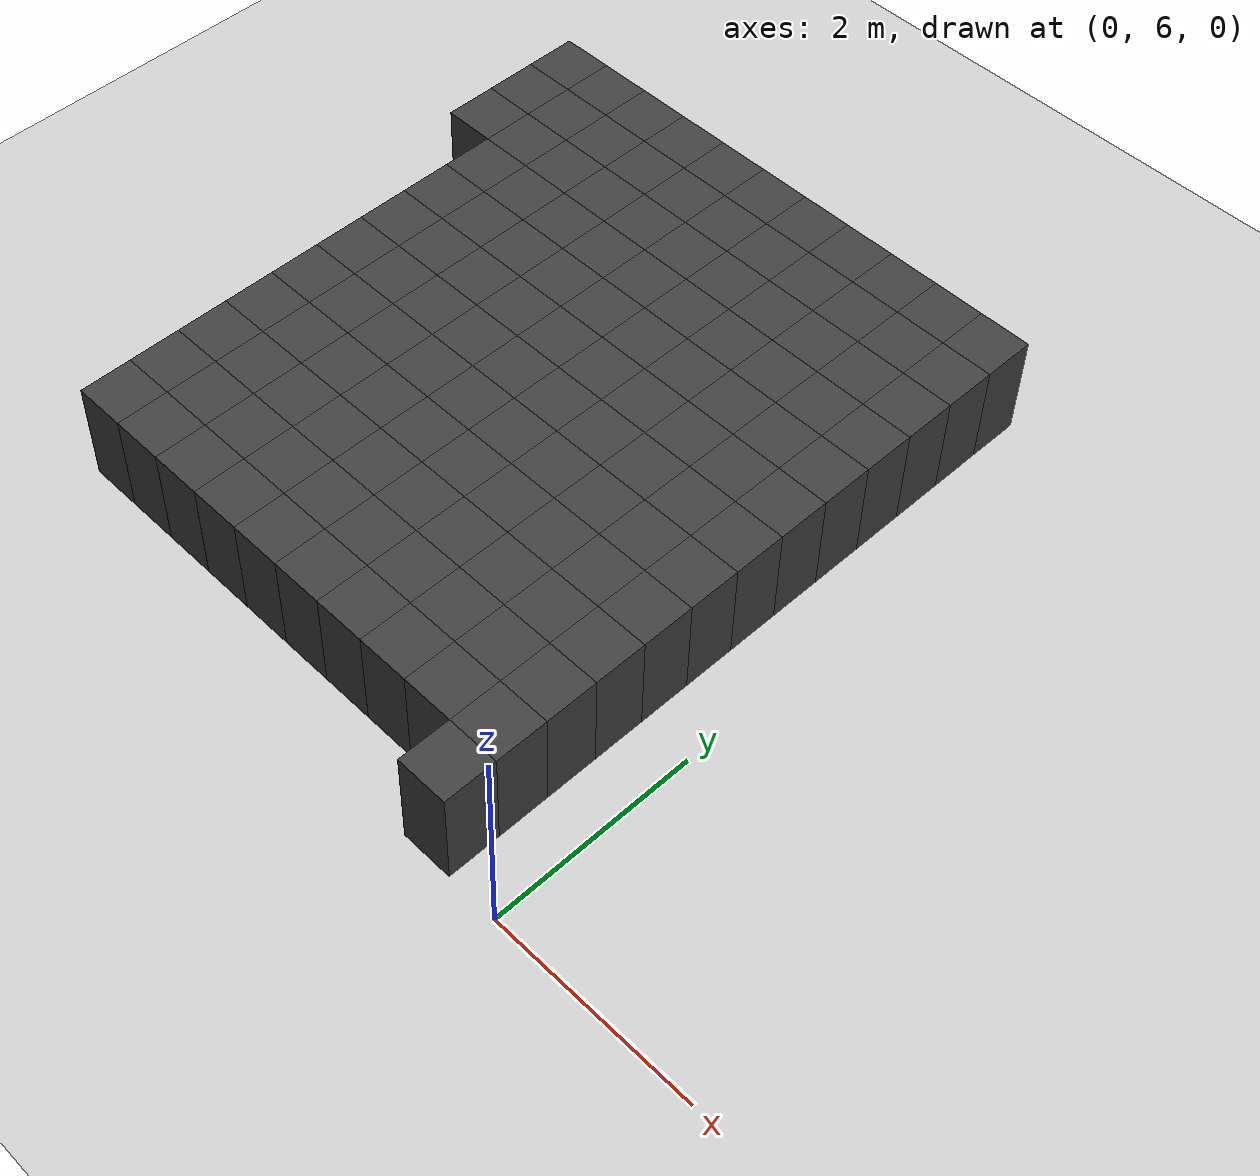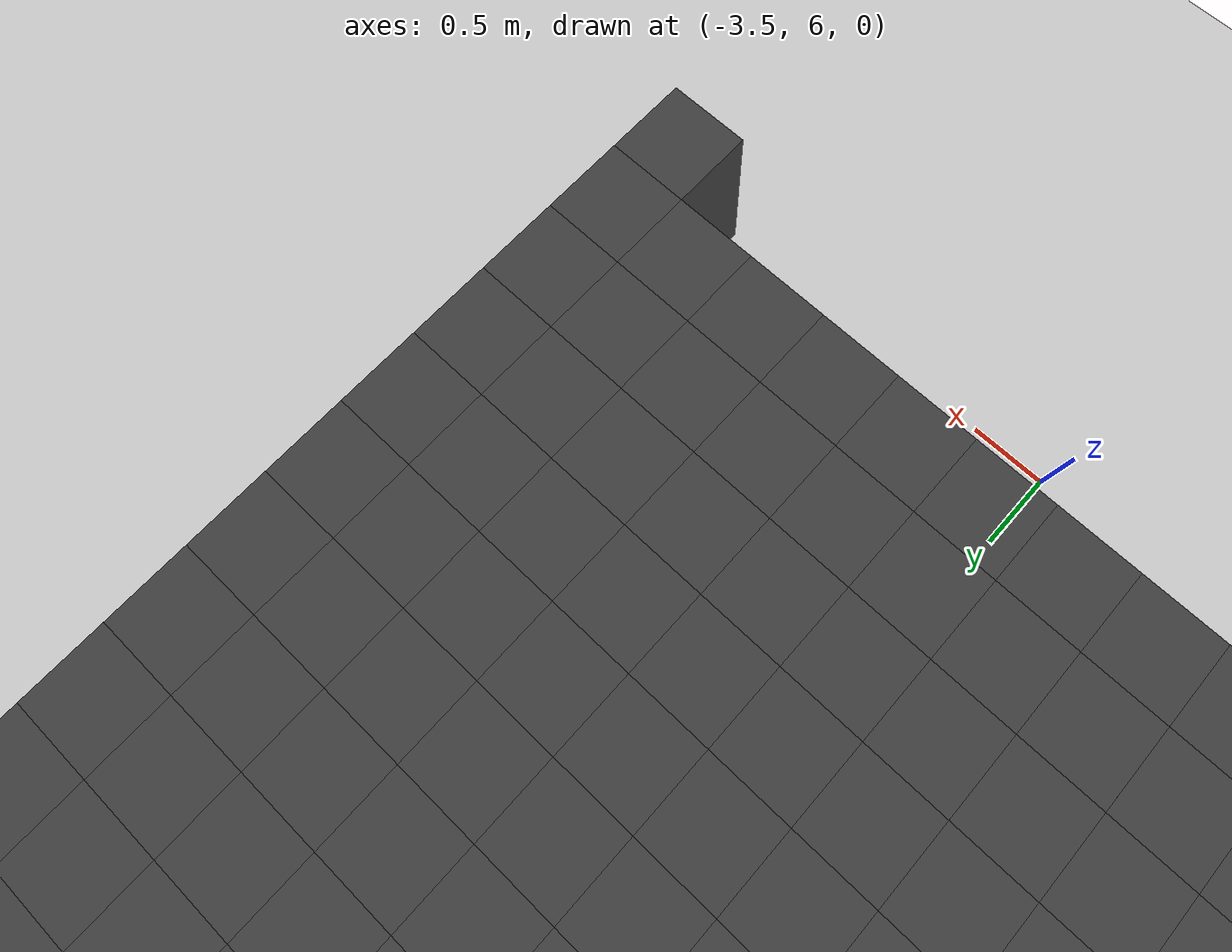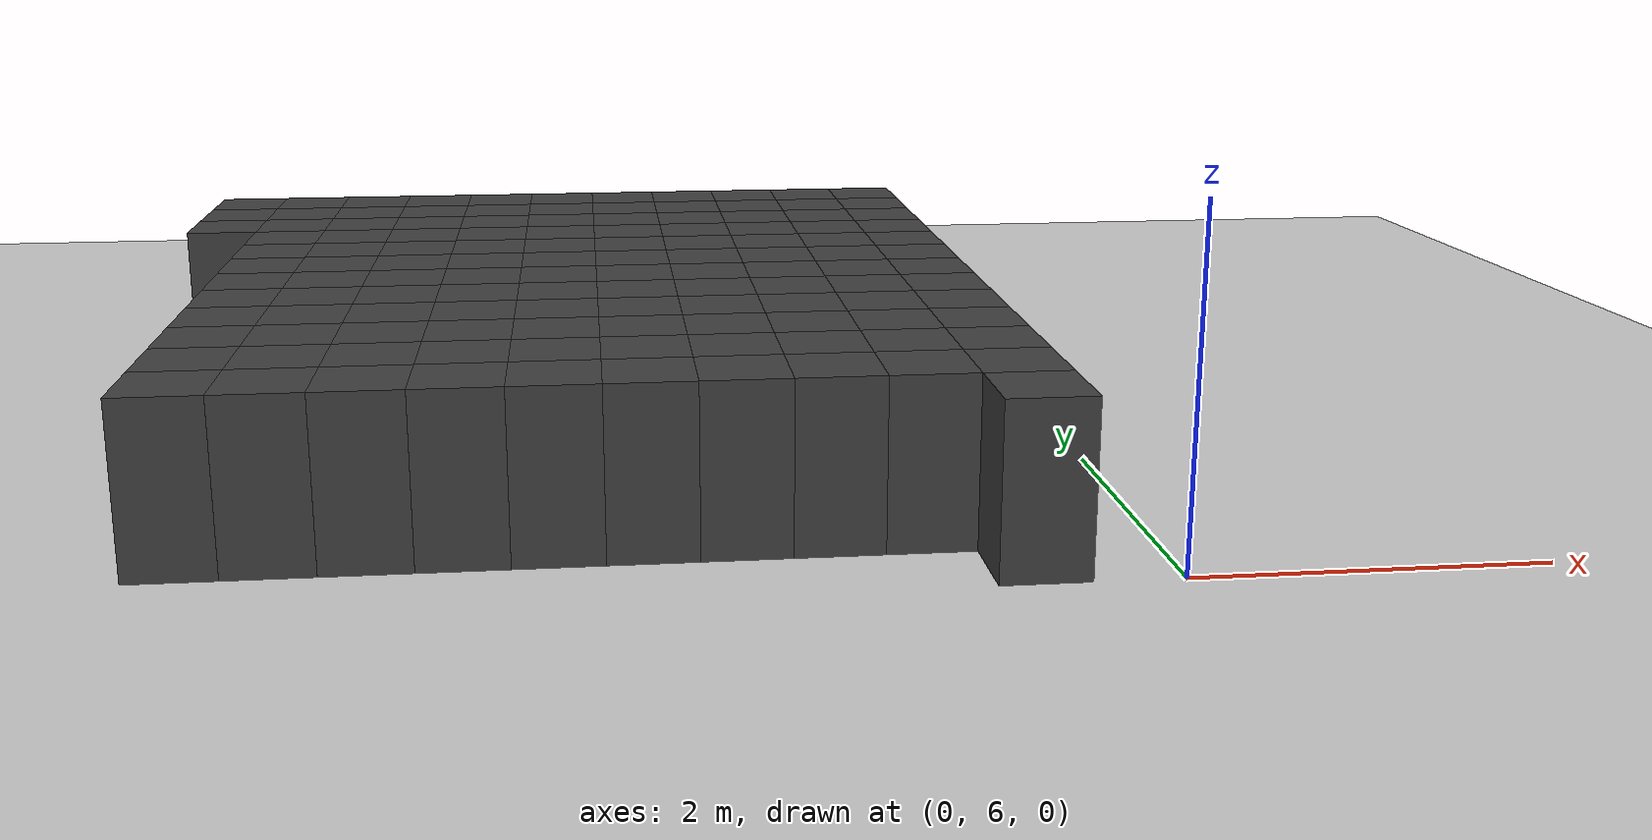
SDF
<sdf version="1.7">
 <world name="map_13364">
  <model name="ground_plane">
   <static>true</static>
   <link name="link">
    <collision name="collision">
     <geometry><plane><normal>0 0 1</normal><size>200 200</size></plane></geometry>
    </collision>
    <visual name="visual">
     <geometry><plane><normal>0 0 1</normal><size>200 200</size></plane></geometry>
     <material><ambient>0.8 0.8 0.8 1</ambient><diffuse>0.8 0.8 0.8 1</diffuse></material>
    </visual>
   </link>
  </model>
  <model name="maze_environment">
   <static>true</static>
   <link name="wall_13">
    <pose>-5.750 12.250 0.500 0 0 0</pose>
    <collision name="col"><geometry><box><size>0.5 0.5 1.0</size></box></geometry></collision>
    <visual name="vis">
     <geometry><box><size>0.5 0.5 1.0</size></box></geometry>
     <material><ambient>0.15 0.15 0.15 1</ambient><diffuse>0.25 0.25 0.25 1</diffuse></material>
    </visual>
   </link>
   <link name="wall_14">
    <pose>-5.250 12.250 0.500 0 0 0</pose>
    <collision name="col"><geometry><box><size>0.5 0.5 1.0</size></box></geometry></collision>
    <visual name="vis">
     <geometry><box><size>0.5 0.5 1.0</size></box></geometry>
     <material><ambient>0.15 0.15 0.15 1</ambient><diffuse>0.25 0.25 0.25 1</diffuse></material>
    </visual>
   </link>
   <link name="wall_15">
    <pose>-4.750 12.250 0.500 0 0 0</pose>
    <collision name="col"><geometry><box><size>0.5 0.5 1.0</size></box></geometry></collision>
    <visual name="vis">
     <geometry><box><size>0.5 0.5 1.0</size></box></geometry>
     <material><ambient>0.15 0.15 0.15 1</ambient><diffuse>0.25 0.25 0.25 1</diffuse></material>
    </visual>
   </link>
   <link name="wall_16">
    <pose>-4.250 12.250 0.500 0 0 0</pose>
    <collision name="col"><geometry><box><size>0.5 0.5 1.0</size></box></geometry></collision>
    <visual name="vis">
     <geometry><box><size>0.5 0.5 1.0</size></box></geometry>
     <material><ambient>0.15 0.15 0.15 1</ambient><diffuse>0.25 0.25 0.25 1</diffuse></material>
    </visual>
   </link>
   <link name="wall_17">
    <pose>-3.750 12.250 0.500 0 0 0</pose>
    <collision name="col"><geometry><box><size>0.5 0.5 1.0</size></box></geometry></collision>
    <visual name="vis">
     <geometry><box><size>0.5 0.5 1.0</size></box></geometry>
     <material><ambient>0.15 0.15 0.15 1</ambient><diffuse>0.25 0.25 0.25 1</diffuse></material>
    </visual>
   </link>
   <link name="wall_18">
    <pose>-3.250 12.250 0.500 0 0 0</pose>
    <collision name="col"><geometry><box><size>0.5 0.5 1.0</size></box></geometry></collision>
    <visual name="vis">
     <geometry><box><size>0.5 0.5 1.0</size></box></geometry>
     <material><ambient>0.15 0.15 0.15 1</ambient><diffuse>0.25 0.25 0.25 1</diffuse></material>
    </visual>
   </link>
   <link name="wall_19">
    <pose>-2.750 12.250 0.500 0 0 0</pose>
    <collision name="col"><geometry><box><size>0.5 0.5 1.0</size></box></geometry></collision>
    <visual name="vis">
     <geometry><box><size>0.5 0.5 1.0</size></box></geometry>
     <material><ambient>0.15 0.15 0.15 1</ambient><diffuse>0.25 0.25 0.25 1</diffuse></material>
    </visual>
   </link>
   <link name="wall_20">
    <pose>-2.250 12.250 0.500 0 0 0</pose>
    <collision name="col"><geometry><box><size>0.5 0.5 1.0</size></box></geometry></collision>
    <visual name="vis">
     <geometry><box><size>0.5 0.5 1.0</size></box></geometry>
     <material><ambient>0.15 0.15 0.15 1</ambient><diffuse>0.25 0.25 0.25 1</diffuse></material>
    </visual>
   </link>
   <link name="wall_21">
    <pose>-1.750 12.250 0.500 0 0 0</pose>
    <collision name="col"><geometry><box><size>0.5 0.5 1.0</size></box></geometry></collision>
    <visual name="vis">
     <geometry><box><size>0.5 0.5 1.0</size></box></geometry>
     <material><ambient>0.15 0.15 0.15 1</ambient><diffuse>0.25 0.25 0.25 1</diffuse></material>
    </visual>
   </link>
   <link name="wall_22">
    <pose>-1.250 12.250 0.500 0 0 0</pose>
    <collision name="col"><geometry><box><size>0.5 0.5 1.0</size></box></geometry></collision>
    <visual name="vis">
     <geometry><box><size>0.5 0.5 1.0</size></box></geometry>
     <material><ambient>0.15 0.15 0.15 1</ambient><diffuse>0.25 0.25 0.25 1</diffuse></material>
    </visual>
   </link>
   <link name="wall_23">
    <pose>-0.750 12.250 0.500 0 0 0</pose>
    <collision name="col"><geometry><box><size>0.5 0.5 1.0</size></box></geometry></collision>
    <visual name="vis">
     <geometry><box><size>0.5 0.5 1.0</size></box></geometry>
     <material><ambient>0.15 0.15 0.15 1</ambient><diffuse>0.25 0.25 0.25 1</diffuse></material>
    </visual>
   </link>
   <link name="wall_60">
    <pose>-5.750 11.750 0.500 0 0 0</pose>
    <collision name="col"><geometry><box><size>0.5 0.5 1.0</size></box></geometry></collision>
    <visual name="vis">
     <geometry><box><size>0.5 0.5 1.0</size></box></geometry>
     <material><ambient>0.15 0.15 0.15 1</ambient><diffuse>0.25 0.25 0.25 1</diffuse></material>
    </visual>
   </link>
   <link name="wall_61">
    <pose>-5.250 11.750 0.500 0 0 0</pose>
    <collision name="col"><geometry><box><size>0.5 0.5 1.0</size></box></geometry></collision>
    <visual name="vis">
     <geometry><box><size>0.5 0.5 1.0</size></box></geometry>
     <material><ambient>0.15 0.15 0.15 1</ambient><diffuse>0.25 0.25 0.25 1</diffuse></material>
    </visual>
   </link>
   <link name="wall_62">
    <pose>-4.750 11.750 0.500 0 0 0</pose>
    <collision name="col"><geometry><box><size>0.5 0.5 1.0</size></box></geometry></collision>
    <visual name="vis">
     <geometry><box><size>0.5 0.5 1.0</size></box></geometry>
     <material><ambient>0.15 0.15 0.15 1</ambient><diffuse>0.25 0.25 0.25 1</diffuse></material>
    </visual>
   </link>
   <link name="wall_63">
    <pose>-4.250 11.750 0.500 0 0 0</pose>
    <collision name="col"><geometry><box><size>0.5 0.5 1.0</size></box></geometry></collision>
    <visual name="vis">
     <geometry><box><size>0.5 0.5 1.0</size></box></geometry>
     <material><ambient>0.15 0.15 0.15 1</ambient><diffuse>0.25 0.25 0.25 1</diffuse></material>
    </visual>
   </link>
   <link name="wall_64">
    <pose>-3.750 11.750 0.500 0 0 0</pose>
    <collision name="col"><geometry><box><size>0.5 0.5 1.0</size></box></geometry></collision>
    <visual name="vis">
     <geometry><box><size>0.5 0.5 1.0</size></box></geometry>
     <material><ambient>0.15 0.15 0.15 1</ambient><diffuse>0.25 0.25 0.25 1</diffuse></material>
    </visual>
   </link>
   <link name="wall_65">
    <pose>-3.250 11.750 0.500 0 0 0</pose>
    <collision name="col"><geometry><box><size>0.5 0.5 1.0</size></box></geometry></collision>
    <visual name="vis">
     <geometry><box><size>0.5 0.5 1.0</size></box></geometry>
     <material><ambient>0.15 0.15 0.15 1</ambient><diffuse>0.25 0.25 0.25 1</diffuse></material>
    </visual>
   </link>
   <link name="wall_66">
    <pose>-2.750 11.750 0.500 0 0 0</pose>
    <collision name="col"><geometry><box><size>0.5 0.5 1.0</size></box></geometry></collision>
    <visual name="vis">
     <geometry><box><size>0.5 0.5 1.0</size></box></geometry>
     <material><ambient>0.15 0.15 0.15 1</ambient><diffuse>0.25 0.25 0.25 1</diffuse></material>
    </visual>
   </link>
   <link name="wall_67">
    <pose>-2.250 11.750 0.500 0 0 0</pose>
    <collision name="col"><geometry><box><size>0.5 0.5 1.0</size></box></geometry></collision>
    <visual name="vis">
     <geometry><box><size>0.5 0.5 1.0</size></box></geometry>
     <material><ambient>0.15 0.15 0.15 1</ambient><diffuse>0.25 0.25 0.25 1</diffuse></material>
    </visual>
   </link>
   <link name="wall_68">
    <pose>-1.750 11.750 0.500 0 0 0</pose>
    <collision name="col"><geometry><box><size>0.5 0.5 1.0</size></box></geometry></collision>
    <visual name="vis">
     <geometry><box><size>0.5 0.5 1.0</size></box></geometry>
     <material><ambient>0.15 0.15 0.15 1</ambient><diffuse>0.25 0.25 0.25 1</diffuse></material>
    </visual>
   </link>
   <link name="wall_69">
    <pose>-1.250 11.750 0.500 0 0 0</pose>
    <collision name="col"><geometry><box><size>0.5 0.5 1.0</size></box></geometry></collision>
    <visual name="vis">
     <geometry><box><size>0.5 0.5 1.0</size></box></geometry>
     <material><ambient>0.15 0.15 0.15 1</ambient><diffuse>0.25 0.25 0.25 1</diffuse></material>
    </visual>
   </link>
   <link name="wall_70">
    <pose>-0.750 11.750 0.500 0 0 0</pose>
    <collision name="col"><geometry><box><size>0.5 0.5 1.0</size></box></geometry></collision>
    <visual name="vis">
     <geometry><box><size>0.5 0.5 1.0</size></box></geometry>
     <material><ambient>0.15 0.15 0.15 1</ambient><diffuse>0.25 0.25 0.25 1</diffuse></material>
    </visual>
   </link>
   <link name="wall_107">
    <pose>-5.750 11.250 0.500 0 0 0</pose>
    <collision name="col"><geometry><box><size>0.5 0.5 1.0</size></box></geometry></collision>
    <visual name="vis">
     <geometry><box><size>0.5 0.5 1.0</size></box></geometry>
     <material><ambient>0.15 0.15 0.15 1</ambient><diffuse>0.25 0.25 0.25 1</diffuse></material>
    </visual>
   </link>
   <link name="wall_108">
    <pose>-5.250 11.250 0.500 0 0 0</pose>
    <collision name="col"><geometry><box><size>0.5 0.5 1.0</size></box></geometry></collision>
    <visual name="vis">
     <geometry><box><size>0.5 0.5 1.0</size></box></geometry>
     <material><ambient>0.15 0.15 0.15 1</ambient><diffuse>0.25 0.25 0.25 1</diffuse></material>
    </visual>
   </link>
   <link name="wall_109">
    <pose>-4.750 11.250 0.500 0 0 0</pose>
    <collision name="col"><geometry><box><size>0.5 0.5 1.0</size></box></geometry></collision>
    <visual name="vis">
     <geometry><box><size>0.5 0.5 1.0</size></box></geometry>
     <material><ambient>0.15 0.15 0.15 1</ambient><diffuse>0.25 0.25 0.25 1</diffuse></material>
    </visual>
   </link>
   <link name="wall_110">
    <pose>-4.250 11.250 0.500 0 0 0</pose>
    <collision name="col"><geometry><box><size>0.5 0.5 1.0</size></box></geometry></collision>
    <visual name="vis">
     <geometry><box><size>0.5 0.5 1.0</size></box></geometry>
     <material><ambient>0.15 0.15 0.15 1</ambient><diffuse>0.25 0.25 0.25 1</diffuse></material>
    </visual>
   </link>
   <link name="wall_111">
    <pose>-3.750 11.250 0.500 0 0 0</pose>
    <collision name="col"><geometry><box><size>0.5 0.5 1.0</size></box></geometry></collision>
    <visual name="vis">
     <geometry><box><size>0.5 0.5 1.0</size></box></geometry>
     <material><ambient>0.15 0.15 0.15 1</ambient><diffuse>0.25 0.25 0.25 1</diffuse></material>
    </visual>
   </link>
   <link name="wall_112">
    <pose>-3.250 11.250 0.500 0 0 0</pose>
    <collision name="col"><geometry><box><size>0.5 0.5 1.0</size></box></geometry></collision>
    <visual name="vis">
     <geometry><box><size>0.5 0.5 1.0</size></box></geometry>
     <material><ambient>0.15 0.15 0.15 1</ambient><diffuse>0.25 0.25 0.25 1</diffuse></material>
    </visual>
   </link>
   <link name="wall_113">
    <pose>-2.750 11.250 0.500 0 0 0</pose>
    <collision name="col"><geometry><box><size>0.5 0.5 1.0</size></box></geometry></collision>
    <visual name="vis">
     <geometry><box><size>0.5 0.5 1.0</size></box></geometry>
     <material><ambient>0.15 0.15 0.15 1</ambient><diffuse>0.25 0.25 0.25 1</diffuse></material>
    </visual>
   </link>
   <link name="wall_114">
    <pose>-2.250 11.250 0.500 0 0 0</pose>
    <collision name="col"><geometry><box><size>0.5 0.5 1.0</size></box></geometry></collision>
    <visual name="vis">
     <geometry><box><size>0.5 0.5 1.0</size></box></geometry>
     <material><ambient>0.15 0.15 0.15 1</ambient><diffuse>0.25 0.25 0.25 1</diffuse></material>
    </visual>
   </link>
   <link name="wall_115">
    <pose>-1.750 11.250 0.500 0 0 0</pose>
    <collision name="col"><geometry><box><size>0.5 0.5 1.0</size></box></geometry></collision>
    <visual name="vis">
     <geometry><box><size>0.5 0.5 1.0</size></box></geometry>
     <material><ambient>0.15 0.15 0.15 1</ambient><diffuse>0.25 0.25 0.25 1</diffuse></material>
    </visual>
   </link>
   <link name="wall_116">
    <pose>-1.250 11.250 0.500 0 0 0</pose>
    <collision name="col"><geometry><box><size>0.5 0.5 1.0</size></box></geometry></collision>
    <visual name="vis">
     <geometry><box><size>0.5 0.5 1.0</size></box></geometry>
     <material><ambient>0.15 0.15 0.15 1</ambient><diffuse>0.25 0.25 0.25 1</diffuse></material>
    </visual>
   </link>
   <link name="wall_117">
    <pose>-0.750 11.250 0.500 0 0 0</pose>
    <collision name="col"><geometry><box><size>0.5 0.5 1.0</size></box></geometry></collision>
    <visual name="vis">
     <geometry><box><size>0.5 0.5 1.0</size></box></geometry>
     <material><ambient>0.15 0.15 0.15 1</ambient><diffuse>0.25 0.25 0.25 1</diffuse></material>
    </visual>
   </link>
   <link name="wall_155">
    <pose>-5.250 10.750 0.500 0 0 0</pose>
    <collision name="col"><geometry><box><size>0.5 0.5 1.0</size></box></geometry></collision>
    <visual name="vis">
     <geometry><box><size>0.5 0.5 1.0</size></box></geometry>
     <material><ambient>0.15 0.15 0.15 1</ambient><diffuse>0.25 0.25 0.25 1</diffuse></material>
    </visual>
   </link>
   <link name="wall_156">
    <pose>-4.750 10.750 0.500 0 0 0</pose>
    <collision name="col"><geometry><box><size>0.5 0.5 1.0</size></box></geometry></collision>
    <visual name="vis">
     <geometry><box><size>0.5 0.5 1.0</size></box></geometry>
     <material><ambient>0.15 0.15 0.15 1</ambient><diffuse>0.25 0.25 0.25 1</diffuse></material>
    </visual>
   </link>
   <link name="wall_157">
    <pose>-4.250 10.750 0.500 0 0 0</pose>
    <collision name="col"><geometry><box><size>0.5 0.5 1.0</size></box></geometry></collision>
    <visual name="vis">
     <geometry><box><size>0.5 0.5 1.0</size></box></geometry>
     <material><ambient>0.15 0.15 0.15 1</ambient><diffuse>0.25 0.25 0.25 1</diffuse></material>
    </visual>
   </link>
   <link name="wall_158">
    <pose>-3.750 10.750 0.500 0 0 0</pose>
    <collision name="col"><geometry><box><size>0.5 0.5 1.0</size></box></geometry></collision>
    <visual name="vis">
     <geometry><box><size>0.5 0.5 1.0</size></box></geometry>
     <material><ambient>0.15 0.15 0.15 1</ambient><diffuse>0.25 0.25 0.25 1</diffuse></material>
    </visual>
   </link>
   <link name="wall_159">
    <pose>-3.250 10.750 0.500 0 0 0</pose>
    <collision name="col"><geometry><box><size>0.5 0.5 1.0</size></box></geometry></collision>
    <visual name="vis">
     <geometry><box><size>0.5 0.5 1.0</size></box></geometry>
     <material><ambient>0.15 0.15 0.15 1</ambient><diffuse>0.25 0.25 0.25 1</diffuse></material>
    </visual>
   </link>
   <link name="wall_160">
    <pose>-2.750 10.750 0.500 0 0 0</pose>
    <collision name="col"><geometry><box><size>0.5 0.5 1.0</size></box></geometry></collision>
    <visual name="vis">
     <geometry><box><size>0.5 0.5 1.0</size></box></geometry>
     <material><ambient>0.15 0.15 0.15 1</ambient><diffuse>0.25 0.25 0.25 1</diffuse></material>
    </visual>
   </link>
   <link name="wall_161">
    <pose>-2.250 10.750 0.500 0 0 0</pose>
    <collision name="col"><geometry><box><size>0.5 0.5 1.0</size></box></geometry></collision>
    <visual name="vis">
     <geometry><box><size>0.5 0.5 1.0</size></box></geometry>
     <material><ambient>0.15 0.15 0.15 1</ambient><diffuse>0.25 0.25 0.25 1</diffuse></material>
    </visual>
   </link>
   <link name="wall_162">
    <pose>-1.750 10.750 0.500 0 0 0</pose>
    <collision name="col"><geometry><box><size>0.5 0.5 1.0</size></box></geometry></collision>
    <visual name="vis">
     <geometry><box><size>0.5 0.5 1.0</size></box></geometry>
     <material><ambient>0.15 0.15 0.15 1</ambient><diffuse>0.25 0.25 0.25 1</diffuse></material>
    </visual>
   </link>
   <link name="wall_163">
    <pose>-1.250 10.750 0.500 0 0 0</pose>
    <collision name="col"><geometry><box><size>0.5 0.5 1.0</size></box></geometry></collision>
    <visual name="vis">
     <geometry><box><size>0.5 0.5 1.0</size></box></geometry>
     <material><ambient>0.15 0.15 0.15 1</ambient><diffuse>0.25 0.25 0.25 1</diffuse></material>
    </visual>
   </link>
   <link name="wall_164">
    <pose>-0.750 10.750 0.500 0 0 0</pose>
    <collision name="col"><geometry><box><size>0.5 0.5 1.0</size></box></geometry></collision>
    <visual name="vis">
     <geometry><box><size>0.5 0.5 1.0</size></box></geometry>
     <material><ambient>0.15 0.15 0.15 1</ambient><diffuse>0.25 0.25 0.25 1</diffuse></material>
    </visual>
   </link>
   <link name="wall_199">
    <pose>-5.250 10.250 0.500 0 0 0</pose>
    <collision name="col"><geometry><box><size>0.5 0.5 1.0</size></box></geometry></collision>
    <visual name="vis">
     <geometry><box><size>0.5 0.5 1.0</size></box></geometry>
     <material><ambient>0.15 0.15 0.15 1</ambient><diffuse>0.25 0.25 0.25 1</diffuse></material>
    </visual>
   </link>
   <link name="wall_200">
    <pose>-4.750 10.250 0.500 0 0 0</pose>
    <collision name="col"><geometry><box><size>0.5 0.5 1.0</size></box></geometry></collision>
    <visual name="vis">
     <geometry><box><size>0.5 0.5 1.0</size></box></geometry>
     <material><ambient>0.15 0.15 0.15 1</ambient><diffuse>0.25 0.25 0.25 1</diffuse></material>
    </visual>
   </link>
   <link name="wall_201">
    <pose>-4.250 10.250 0.500 0 0 0</pose>
    <collision name="col"><geometry><box><size>0.5 0.5 1.0</size></box></geometry></collision>
    <visual name="vis">
     <geometry><box><size>0.5 0.5 1.0</size></box></geometry>
     <material><ambient>0.15 0.15 0.15 1</ambient><diffuse>0.25 0.25 0.25 1</diffuse></material>
    </visual>
   </link>
   <link name="wall_202">
    <pose>-3.750 10.250 0.500 0 0 0</pose>
    <collision name="col"><geometry><box><size>0.5 0.5 1.0</size></box></geometry></collision>
    <visual name="vis">
     <geometry><box><size>0.5 0.5 1.0</size></box></geometry>
     <material><ambient>0.15 0.15 0.15 1</ambient><diffuse>0.25 0.25 0.25 1</diffuse></material>
    </visual>
   </link>
   <link name="wall_203">
    <pose>-3.250 10.250 0.500 0 0 0</pose>
    <collision name="col"><geometry><box><size>0.5 0.5 1.0</size></box></geometry></collision>
    <visual name="vis">
     <geometry><box><size>0.5 0.5 1.0</size></box></geometry>
     <material><ambient>0.15 0.15 0.15 1</ambient><diffuse>0.25 0.25 0.25 1</diffuse></material>
    </visual>
   </link>
   <link name="wall_204">
    <pose>-2.750 10.250 0.500 0 0 0</pose>
    <collision name="col"><geometry><box><size>0.5 0.5 1.0</size></box></geometry></collision>
    <visual name="vis">
     <geometry><box><size>0.5 0.5 1.0</size></box></geometry>
     <material><ambient>0.15 0.15 0.15 1</ambient><diffuse>0.25 0.25 0.25 1</diffuse></material>
    </visual>
   </link>
   <link name="wall_205">
    <pose>-2.250 10.250 0.500 0 0 0</pose>
    <collision name="col"><geometry><box><size>0.5 0.5 1.0</size></box></geometry></collision>
    <visual name="vis">
     <geometry><box><size>0.5 0.5 1.0</size></box></geometry>
     <material><ambient>0.15 0.15 0.15 1</ambient><diffuse>0.25 0.25 0.25 1</diffuse></material>
    </visual>
   </link>
   <link name="wall_206">
    <pose>-1.750 10.250 0.500 0 0 0</pose>
    <collision name="col"><geometry><box><size>0.5 0.5 1.0</size></box></geometry></collision>
    <visual name="vis">
     <geometry><box><size>0.5 0.5 1.0</size></box></geometry>
     <material><ambient>0.15 0.15 0.15 1</ambient><diffuse>0.25 0.25 0.25 1</diffuse></material>
    </visual>
   </link>
   <link name="wall_207">
    <pose>-1.250 10.250 0.500 0 0 0</pose>
    <collision name="col"><geometry><box><size>0.5 0.5 1.0</size></box></geometry></collision>
    <visual name="vis">
     <geometry><box><size>0.5 0.5 1.0</size></box></geometry>
     <material><ambient>0.15 0.15 0.15 1</ambient><diffuse>0.25 0.25 0.25 1</diffuse></material>
    </visual>
   </link>
   <link name="wall_208">
    <pose>-0.750 10.250 0.500 0 0 0</pose>
    <collision name="col"><geometry><box><size>0.5 0.5 1.0</size></box></geometry></collision>
    <visual name="vis">
     <geometry><box><size>0.5 0.5 1.0</size></box></geometry>
     <material><ambient>0.15 0.15 0.15 1</ambient><diffuse>0.25 0.25 0.25 1</diffuse></material>
    </visual>
   </link>
   <link name="wall_243">
    <pose>-5.250 9.750 0.500 0 0 0</pose>
    <collision name="col"><geometry><box><size>0.5 0.5 1.0</size></box></geometry></collision>
    <visual name="vis">
     <geometry><box><size>0.5 0.5 1.0</size></box></geometry>
     <material><ambient>0.15 0.15 0.15 1</ambient><diffuse>0.25 0.25 0.25 1</diffuse></material>
    </visual>
   </link>
   <link name="wall_244">
    <pose>-4.750 9.750 0.500 0 0 0</pose>
    <collision name="col"><geometry><box><size>0.5 0.5 1.0</size></box></geometry></collision>
    <visual name="vis">
     <geometry><box><size>0.5 0.5 1.0</size></box></geometry>
     <material><ambient>0.15 0.15 0.15 1</ambient><diffuse>0.25 0.25 0.25 1</diffuse></material>
    </visual>
   </link>
   <link name="wall_245">
    <pose>-4.250 9.750 0.500 0 0 0</pose>
    <collision name="col"><geometry><box><size>0.5 0.5 1.0</size></box></geometry></collision>
    <visual name="vis">
     <geometry><box><size>0.5 0.5 1.0</size></box></geometry>
     <material><ambient>0.15 0.15 0.15 1</ambient><diffuse>0.25 0.25 0.25 1</diffuse></material>
    </visual>
   </link>
   <link name="wall_246">
    <pose>-3.750 9.750 0.500 0 0 0</pose>
    <collision name="col"><geometry><box><size>0.5 0.5 1.0</size></box></geometry></collision>
    <visual name="vis">
     <geometry><box><size>0.5 0.5 1.0</size></box></geometry>
     <material><ambient>0.15 0.15 0.15 1</ambient><diffuse>0.25 0.25 0.25 1</diffuse></material>
    </visual>
   </link>
   <link name="wall_247">
    <pose>-3.250 9.750 0.500 0 0 0</pose>
    <collision name="col"><geometry><box><size>0.5 0.5 1.0</size></box></geometry></collision>
    <visual name="vis">
     <geometry><box><size>0.5 0.5 1.0</size></box></geometry>
     <material><ambient>0.15 0.15 0.15 1</ambient><diffuse>0.25 0.25 0.25 1</diffuse></material>
    </visual>
   </link>
   <link name="wall_248">
    <pose>-2.750 9.750 0.500 0 0 0</pose>
    <collision name="col"><geometry><box><size>0.5 0.5 1.0</size></box></geometry></collision>
    <visual name="vis">
     <geometry><box><size>0.5 0.5 1.0</size></box></geometry>
     <material><ambient>0.15 0.15 0.15 1</ambient><diffuse>0.25 0.25 0.25 1</diffuse></material>
    </visual>
   </link>
   <link name="wall_249">
    <pose>-2.250 9.750 0.500 0 0 0</pose>
    <collision name="col"><geometry><box><size>0.5 0.5 1.0</size></box></geometry></collision>
    <visual name="vis">
     <geometry><box><size>0.5 0.5 1.0</size></box></geometry>
     <material><ambient>0.15 0.15 0.15 1</ambient><diffuse>0.25 0.25 0.25 1</diffuse></material>
    </visual>
   </link>
   <link name="wall_250">
    <pose>-1.750 9.750 0.500 0 0 0</pose>
    <collision name="col"><geometry><box><size>0.5 0.5 1.0</size></box></geometry></collision>
    <visual name="vis">
     <geometry><box><size>0.5 0.5 1.0</size></box></geometry>
     <material><ambient>0.15 0.15 0.15 1</ambient><diffuse>0.25 0.25 0.25 1</diffuse></material>
    </visual>
   </link>
   <link name="wall_251">
    <pose>-1.250 9.750 0.500 0 0 0</pose>
    <collision name="col"><geometry><box><size>0.5 0.5 1.0</size></box></geometry></collision>
    <visual name="vis">
     <geometry><box><size>0.5 0.5 1.0</size></box></geometry>
     <material><ambient>0.15 0.15 0.15 1</ambient><diffuse>0.25 0.25 0.25 1</diffuse></material>
    </visual>
   </link>
   <link name="wall_252">
    <pose>-0.750 9.750 0.500 0 0 0</pose>
    <collision name="col"><geometry><box><size>0.5 0.5 1.0</size></box></geometry></collision>
    <visual name="vis">
     <geometry><box><size>0.5 0.5 1.0</size></box></geometry>
     <material><ambient>0.15 0.15 0.15 1</ambient><diffuse>0.25 0.25 0.25 1</diffuse></material>
    </visual>
   </link>
   <link name="wall_287">
    <pose>-5.250 9.250 0.500 0 0 0</pose>
    <collision name="col"><geometry><box><size>0.5 0.5 1.0</size></box></geometry></collision>
    <visual name="vis">
     <geometry><box><size>0.5 0.5 1.0</size></box></geometry>
     <material><ambient>0.15 0.15 0.15 1</ambient><diffuse>0.25 0.25 0.25 1</diffuse></material>
    </visual>
   </link>
   <link name="wall_288">
    <pose>-4.750 9.250 0.500 0 0 0</pose>
    <collision name="col"><geometry><box><size>0.5 0.5 1.0</size></box></geometry></collision>
    <visual name="vis">
     <geometry><box><size>0.5 0.5 1.0</size></box></geometry>
     <material><ambient>0.15 0.15 0.15 1</ambient><diffuse>0.25 0.25 0.25 1</diffuse></material>
    </visual>
   </link>
   <link name="wall_289">
    <pose>-4.250 9.250 0.500 0 0 0</pose>
    <collision name="col"><geometry><box><size>0.5 0.5 1.0</size></box></geometry></collision>
    <visual name="vis">
     <geometry><box><size>0.5 0.5 1.0</size></box></geometry>
     <material><ambient>0.15 0.15 0.15 1</ambient><diffuse>0.25 0.25 0.25 1</diffuse></material>
    </visual>
   </link>
   <link name="wall_290">
    <pose>-3.750 9.250 0.500 0 0 0</pose>
    <collision name="col"><geometry><box><size>0.5 0.5 1.0</size></box></geometry></collision>
    <visual name="vis">
     <geometry><box><size>0.5 0.5 1.0</size></box></geometry>
     <material><ambient>0.15 0.15 0.15 1</ambient><diffuse>0.25 0.25 0.25 1</diffuse></material>
    </visual>
   </link>
   <link name="wall_291">
    <pose>-3.250 9.250 0.500 0 0 0</pose>
    <collision name="col"><geometry><box><size>0.5 0.5 1.0</size></box></geometry></collision>
    <visual name="vis">
     <geometry><box><size>0.5 0.5 1.0</size></box></geometry>
     <material><ambient>0.15 0.15 0.15 1</ambient><diffuse>0.25 0.25 0.25 1</diffuse></material>
    </visual>
   </link>
   <link name="wall_292">
    <pose>-2.750 9.250 0.500 0 0 0</pose>
    <collision name="col"><geometry><box><size>0.5 0.5 1.0</size></box></geometry></collision>
    <visual name="vis">
     <geometry><box><size>0.5 0.5 1.0</size></box></geometry>
     <material><ambient>0.15 0.15 0.15 1</ambient><diffuse>0.25 0.25 0.25 1</diffuse></material>
    </visual>
   </link>
   <link name="wall_293">
    <pose>-2.250 9.250 0.500 0 0 0</pose>
    <collision name="col"><geometry><box><size>0.5 0.5 1.0</size></box></geometry></collision>
    <visual name="vis">
     <geometry><box><size>0.5 0.5 1.0</size></box></geometry>
     <material><ambient>0.15 0.15 0.15 1</ambient><diffuse>0.25 0.25 0.25 1</diffuse></material>
    </visual>
   </link>
   <link name="wall_294">
    <pose>-1.750 9.250 0.500 0 0 0</pose>
    <collision name="col"><geometry><box><size>0.5 0.5 1.0</size></box></geometry></collision>
    <visual name="vis">
     <geometry><box><size>0.5 0.5 1.0</size></box></geometry>
     <material><ambient>0.15 0.15 0.15 1</ambient><diffuse>0.25 0.25 0.25 1</diffuse></material>
    </visual>
   </link>
   <link name="wall_295">
    <pose>-1.250 9.250 0.500 0 0 0</pose>
    <collision name="col"><geometry><box><size>0.5 0.5 1.0</size></box></geometry></collision>
    <visual name="vis">
     <geometry><box><size>0.5 0.5 1.0</size></box></geometry>
     <material><ambient>0.15 0.15 0.15 1</ambient><diffuse>0.25 0.25 0.25 1</diffuse></material>
    </visual>
   </link>
   <link name="wall_296">
    <pose>-0.750 9.250 0.500 0 0 0</pose>
    <collision name="col"><geometry><box><size>0.5 0.5 1.0</size></box></geometry></collision>
    <visual name="vis">
     <geometry><box><size>0.5 0.5 1.0</size></box></geometry>
     <material><ambient>0.15 0.15 0.15 1</ambient><diffuse>0.25 0.25 0.25 1</diffuse></material>
    </visual>
   </link>
   <link name="wall_331">
    <pose>-5.250 8.750 0.500 0 0 0</pose>
    <collision name="col"><geometry><box><size>0.5 0.5 1.0</size></box></geometry></collision>
    <visual name="vis">
     <geometry><box><size>0.5 0.5 1.0</size></box></geometry>
     <material><ambient>0.15 0.15 0.15 1</ambient><diffuse>0.25 0.25 0.25 1</diffuse></material>
    </visual>
   </link>
   <link name="wall_332">
    <pose>-4.750 8.750 0.500 0 0 0</pose>
    <collision name="col"><geometry><box><size>0.5 0.5 1.0</size></box></geometry></collision>
    <visual name="vis">
     <geometry><box><size>0.5 0.5 1.0</size></box></geometry>
     <material><ambient>0.15 0.15 0.15 1</ambient><diffuse>0.25 0.25 0.25 1</diffuse></material>
    </visual>
   </link>
   <link name="wall_333">
    <pose>-4.250 8.750 0.500 0 0 0</pose>
    <collision name="col"><geometry><box><size>0.5 0.5 1.0</size></box></geometry></collision>
    <visual name="vis">
     <geometry><box><size>0.5 0.5 1.0</size></box></geometry>
     <material><ambient>0.15 0.15 0.15 1</ambient><diffuse>0.25 0.25 0.25 1</diffuse></material>
    </visual>
   </link>
   <link name="wall_334">
    <pose>-3.750 8.750 0.500 0 0 0</pose>
    <collision name="col"><geometry><box><size>0.5 0.5 1.0</size></box></geometry></collision>
    <visual name="vis">
     <geometry><box><size>0.5 0.5 1.0</size></box></geometry>
     <material><ambient>0.15 0.15 0.15 1</ambient><diffuse>0.25 0.25 0.25 1</diffuse></material>
    </visual>
   </link>
   <link name="wall_335">
    <pose>-3.250 8.750 0.500 0 0 0</pose>
    <collision name="col"><geometry><box><size>0.5 0.5 1.0</size></box></geometry></collision>
    <visual name="vis">
     <geometry><box><size>0.5 0.5 1.0</size></box></geometry>
     <material><ambient>0.15 0.15 0.15 1</ambient><diffuse>0.25 0.25 0.25 1</diffuse></material>
    </visual>
   </link>
   <link name="wall_336">
    <pose>-2.750 8.750 0.500 0 0 0</pose>
    <collision name="col"><geometry><box><size>0.5 0.5 1.0</size></box></geometry></collision>
    <visual name="vis">
     <geometry><box><size>0.5 0.5 1.0</size></box></geometry>
     <material><ambient>0.15 0.15 0.15 1</ambient><diffuse>0.25 0.25 0.25 1</diffuse></material>
    </visual>
   </link>
   <link name="wall_337">
    <pose>-2.250 8.750 0.500 0 0 0</pose>
    <collision name="col"><geometry><box><size>0.5 0.5 1.0</size></box></geometry></collision>
    <visual name="vis">
     <geometry><box><size>0.5 0.5 1.0</size></box></geometry>
     <material><ambient>0.15 0.15 0.15 1</ambient><diffuse>0.25 0.25 0.25 1</diffuse></material>
    </visual>
   </link>
   <link name="wall_338">
    <pose>-1.750 8.750 0.500 0 0 0</pose>
    <collision name="col"><geometry><box><size>0.5 0.5 1.0</size></box></geometry></collision>
    <visual name="vis">
     <geometry><box><size>0.5 0.5 1.0</size></box></geometry>
     <material><ambient>0.15 0.15 0.15 1</ambient><diffuse>0.25 0.25 0.25 1</diffuse></material>
    </visual>
   </link>
   <link name="wall_339">
    <pose>-1.250 8.750 0.500 0 0 0</pose>
    <collision name="col"><geometry><box><size>0.5 0.5 1.0</size></box></geometry></collision>
    <visual name="vis">
     <geometry><box><size>0.5 0.5 1.0</size></box></geometry>
     <material><ambient>0.15 0.15 0.15 1</ambient><diffuse>0.25 0.25 0.25 1</diffuse></material>
    </visual>
   </link>
   <link name="wall_340">
    <pose>-0.750 8.750 0.500 0 0 0</pose>
    <collision name="col"><geometry><box><size>0.5 0.5 1.0</size></box></geometry></collision>
    <visual name="vis">
     <geometry><box><size>0.5 0.5 1.0</size></box></geometry>
     <material><ambient>0.15 0.15 0.15 1</ambient><diffuse>0.25 0.25 0.25 1</diffuse></material>
    </visual>
   </link>
   <link name="wall_375">
    <pose>-5.250 8.250 0.500 0 0 0</pose>
    <collision name="col"><geometry><box><size>0.5 0.5 1.0</size></box></geometry></collision>
    <visual name="vis">
     <geometry><box><size>0.5 0.5 1.0</size></box></geometry>
     <material><ambient>0.15 0.15 0.15 1</ambient><diffuse>0.25 0.25 0.25 1</diffuse></material>
    </visual>
   </link>
   <link name="wall_376">
    <pose>-4.750 8.250 0.500 0 0 0</pose>
    <collision name="col"><geometry><box><size>0.5 0.5 1.0</size></box></geometry></collision>
    <visual name="vis">
     <geometry><box><size>0.5 0.5 1.0</size></box></geometry>
     <material><ambient>0.15 0.15 0.15 1</ambient><diffuse>0.25 0.25 0.25 1</diffuse></material>
    </visual>
   </link>
   <link name="wall_377">
    <pose>-4.250 8.250 0.500 0 0 0</pose>
    <collision name="col"><geometry><box><size>0.5 0.5 1.0</size></box></geometry></collision>
    <visual name="vis">
     <geometry><box><size>0.5 0.5 1.0</size></box></geometry>
     <material><ambient>0.15 0.15 0.15 1</ambient><diffuse>0.25 0.25 0.25 1</diffuse></material>
    </visual>
   </link>
   <link name="wall_378">
    <pose>-3.750 8.250 0.500 0 0 0</pose>
    <collision name="col"><geometry><box><size>0.5 0.5 1.0</size></box></geometry></collision>
    <visual name="vis">
     <geometry><box><size>0.5 0.5 1.0</size></box></geometry>
     <material><ambient>0.15 0.15 0.15 1</ambient><diffuse>0.25 0.25 0.25 1</diffuse></material>
    </visual>
   </link>
   <link name="wall_379">
    <pose>-3.250 8.250 0.500 0 0 0</pose>
    <collision name="col"><geometry><box><size>0.5 0.5 1.0</size></box></geometry></collision>
    <visual name="vis">
     <geometry><box><size>0.5 0.5 1.0</size></box></geometry>
     <material><ambient>0.15 0.15 0.15 1</ambient><diffuse>0.25 0.25 0.25 1</diffuse></material>
    </visual>
   </link>
   <link name="wall_380">
    <pose>-2.750 8.250 0.500 0 0 0</pose>
    <collision name="col"><geometry><box><size>0.5 0.5 1.0</size></box></geometry></collision>
    <visual name="vis">
     <geometry><box><size>0.5 0.5 1.0</size></box></geometry>
     <material><ambient>0.15 0.15 0.15 1</ambient><diffuse>0.25 0.25 0.25 1</diffuse></material>
    </visual>
   </link>
   <link name="wall_381">
    <pose>-2.250 8.250 0.500 0 0 0</pose>
    <collision name="col"><geometry><box><size>0.5 0.5 1.0</size></box></geometry></collision>
    <visual name="vis">
     <geometry><box><size>0.5 0.5 1.0</size></box></geometry>
     <material><ambient>0.15 0.15 0.15 1</ambient><diffuse>0.25 0.25 0.25 1</diffuse></material>
    </visual>
   </link>
   <link name="wall_382">
    <pose>-1.750 8.250 0.500 0 0 0</pose>
    <collision name="col"><geometry><box><size>0.5 0.5 1.0</size></box></geometry></collision>
    <visual name="vis">
     <geometry><box><size>0.5 0.5 1.0</size></box></geometry>
     <material><ambient>0.15 0.15 0.15 1</ambient><diffuse>0.25 0.25 0.25 1</diffuse></material>
    </visual>
   </link>
   <link name="wall_383">
    <pose>-1.250 8.250 0.500 0 0 0</pose>
    <collision name="col"><geometry><box><size>0.5 0.5 1.0</size></box></geometry></collision>
    <visual name="vis">
     <geometry><box><size>0.5 0.5 1.0</size></box></geometry>
     <material><ambient>0.15 0.15 0.15 1</ambient><diffuse>0.25 0.25 0.25 1</diffuse></material>
    </visual>
   </link>
   <link name="wall_384">
    <pose>-0.750 8.250 0.500 0 0 0</pose>
    <collision name="col"><geometry><box><size>0.5 0.5 1.0</size></box></geometry></collision>
    <visual name="vis">
     <geometry><box><size>0.5 0.5 1.0</size></box></geometry>
     <material><ambient>0.15 0.15 0.15 1</ambient><diffuse>0.25 0.25 0.25 1</diffuse></material>
    </visual>
   </link>
   <link name="wall_424">
    <pose>-5.250 7.750 0.500 0 0 0</pose>
    <collision name="col"><geometry><box><size>0.5 0.5 1.0</size></box></geometry></collision>
    <visual name="vis">
     <geometry><box><size>0.5 0.5 1.0</size></box></geometry>
     <material><ambient>0.15 0.15 0.15 1</ambient><diffuse>0.25 0.25 0.25 1</diffuse></material>
    </visual>
   </link>
   <link name="wall_425">
    <pose>-4.750 7.750 0.500 0 0 0</pose>
    <collision name="col"><geometry><box><size>0.5 0.5 1.0</size></box></geometry></collision>
    <visual name="vis">
     <geometry><box><size>0.5 0.5 1.0</size></box></geometry>
     <material><ambient>0.15 0.15 0.15 1</ambient><diffuse>0.25 0.25 0.25 1</diffuse></material>
    </visual>
   </link>
   <link name="wall_426">
    <pose>-4.250 7.750 0.500 0 0 0</pose>
    <collision name="col"><geometry><box><size>0.5 0.5 1.0</size></box></geometry></collision>
    <visual name="vis">
     <geometry><box><size>0.5 0.5 1.0</size></box></geometry>
     <material><ambient>0.15 0.15 0.15 1</ambient><diffuse>0.25 0.25 0.25 1</diffuse></material>
    </visual>
   </link>
   <link name="wall_427">
    <pose>-3.750 7.750 0.500 0 0 0</pose>
    <collision name="col"><geometry><box><size>0.5 0.5 1.0</size></box></geometry></collision>
    <visual name="vis">
     <geometry><box><size>0.5 0.5 1.0</size></box></geometry>
     <material><ambient>0.15 0.15 0.15 1</ambient><diffuse>0.25 0.25 0.25 1</diffuse></material>
    </visual>
   </link>
   <link name="wall_428">
    <pose>-3.250 7.750 0.500 0 0 0</pose>
    <collision name="col"><geometry><box><size>0.5 0.5 1.0</size></box></geometry></collision>
    <visual name="vis">
     <geometry><box><size>0.5 0.5 1.0</size></box></geometry>
     <material><ambient>0.15 0.15 0.15 1</ambient><diffuse>0.25 0.25 0.25 1</diffuse></material>
    </visual>
   </link>
   <link name="wall_429">
    <pose>-2.750 7.750 0.500 0 0 0</pose>
    <collision name="col"><geometry><box><size>0.5 0.5 1.0</size></box></geometry></collision>
    <visual name="vis">
     <geometry><box><size>0.5 0.5 1.0</size></box></geometry>
     <material><ambient>0.15 0.15 0.15 1</ambient><diffuse>0.25 0.25 0.25 1</diffuse></material>
    </visual>
   </link>
   <link name="wall_430">
    <pose>-2.250 7.750 0.500 0 0 0</pose>
    <collision name="col"><geometry><box><size>0.5 0.5 1.0</size></box></geometry></collision>
    <visual name="vis">
     <geometry><box><size>0.5 0.5 1.0</size></box></geometry>
     <material><ambient>0.15 0.15 0.15 1</ambient><diffuse>0.25 0.25 0.25 1</diffuse></material>
    </visual>
   </link>
   <link name="wall_431">
    <pose>-1.750 7.750 0.500 0 0 0</pose>
    <collision name="col"><geometry><box><size>0.5 0.5 1.0</size></box></geometry></collision>
    <visual name="vis">
     <geometry><box><size>0.5 0.5 1.0</size></box></geometry>
     <material><ambient>0.15 0.15 0.15 1</ambient><diffuse>0.25 0.25 0.25 1</diffuse></material>
    </visual>
   </link>
   <link name="wall_432">
    <pose>-1.250 7.750 0.500 0 0 0</pose>
    <collision name="col"><geometry><box><size>0.5 0.5 1.0</size></box></geometry></collision>
    <visual name="vis">
     <geometry><box><size>0.5 0.5 1.0</size></box></geometry>
     <material><ambient>0.15 0.15 0.15 1</ambient><diffuse>0.25 0.25 0.25 1</diffuse></material>
    </visual>
   </link>
   <link name="wall_433">
    <pose>-0.750 7.750 0.500 0 0 0</pose>
    <collision name="col"><geometry><box><size>0.5 0.5 1.0</size></box></geometry></collision>
    <visual name="vis">
     <geometry><box><size>0.5 0.5 1.0</size></box></geometry>
     <material><ambient>0.15 0.15 0.15 1</ambient><diffuse>0.25 0.25 0.25 1</diffuse></material>
    </visual>
   </link>
   <link name="wall_473">
    <pose>-5.250 7.250 0.500 0 0 0</pose>
    <collision name="col"><geometry><box><size>0.5 0.5 1.0</size></box></geometry></collision>
    <visual name="vis">
     <geometry><box><size>0.5 0.5 1.0</size></box></geometry>
     <material><ambient>0.15 0.15 0.15 1</ambient><diffuse>0.25 0.25 0.25 1</diffuse></material>
    </visual>
   </link>
   <link name="wall_474">
    <pose>-4.750 7.250 0.500 0 0 0</pose>
    <collision name="col"><geometry><box><size>0.5 0.5 1.0</size></box></geometry></collision>
    <visual name="vis">
     <geometry><box><size>0.5 0.5 1.0</size></box></geometry>
     <material><ambient>0.15 0.15 0.15 1</ambient><diffuse>0.25 0.25 0.25 1</diffuse></material>
    </visual>
   </link>
   <link name="wall_475">
    <pose>-4.250 7.250 0.500 0 0 0</pose>
    <collision name="col"><geometry><box><size>0.5 0.5 1.0</size></box></geometry></collision>
    <visual name="vis">
     <geometry><box><size>0.5 0.5 1.0</size></box></geometry>
     <material><ambient>0.15 0.15 0.15 1</ambient><diffuse>0.25 0.25 0.25 1</diffuse></material>
    </visual>
   </link>
   <link name="wall_476">
    <pose>-3.750 7.250 0.500 0 0 0</pose>
    <collision name="col"><geometry><box><size>0.5 0.5 1.0</size></box></geometry></collision>
    <visual name="vis">
     <geometry><box><size>0.5 0.5 1.0</size></box></geometry>
     <material><ambient>0.15 0.15 0.15 1</ambient><diffuse>0.25 0.25 0.25 1</diffuse></material>
    </visual>
   </link>
   <link name="wall_477">
    <pose>-3.250 7.250 0.500 0 0 0</pose>
    <collision name="col"><geometry><box><size>0.5 0.5 1.0</size></box></geometry></collision>
    <visual name="vis">
     <geometry><box><size>0.5 0.5 1.0</size></box></geometry>
     <material><ambient>0.15 0.15 0.15 1</ambient><diffuse>0.25 0.25 0.25 1</diffuse></material>
    </visual>
   </link>
   <link name="wall_478">
    <pose>-2.750 7.250 0.500 0 0 0</pose>
    <collision name="col"><geometry><box><size>0.5 0.5 1.0</size></box></geometry></collision>
    <visual name="vis">
     <geometry><box><size>0.5 0.5 1.0</size></box></geometry>
     <material><ambient>0.15 0.15 0.15 1</ambient><diffuse>0.25 0.25 0.25 1</diffuse></material>
    </visual>
   </link>
   <link name="wall_479">
    <pose>-2.250 7.250 0.500 0 0 0</pose>
    <collision name="col"><geometry><box><size>0.5 0.5 1.0</size></box></geometry></collision>
    <visual name="vis">
     <geometry><box><size>0.5 0.5 1.0</size></box></geometry>
     <material><ambient>0.15 0.15 0.15 1</ambient><diffuse>0.25 0.25 0.25 1</diffuse></material>
    </visual>
   </link>
   <link name="wall_480">
    <pose>-1.750 7.250 0.500 0 0 0</pose>
    <collision name="col"><geometry><box><size>0.5 0.5 1.0</size></box></geometry></collision>
    <visual name="vis">
     <geometry><box><size>0.5 0.5 1.0</size></box></geometry>
     <material><ambient>0.15 0.15 0.15 1</ambient><diffuse>0.25 0.25 0.25 1</diffuse></material>
    </visual>
   </link>
   <link name="wall_481">
    <pose>-1.250 7.250 0.500 0 0 0</pose>
    <collision name="col"><geometry><box><size>0.5 0.5 1.0</size></box></geometry></collision>
    <visual name="vis">
     <geometry><box><size>0.5 0.5 1.0</size></box></geometry>
     <material><ambient>0.15 0.15 0.15 1</ambient><diffuse>0.25 0.25 0.25 1</diffuse></material>
    </visual>
   </link>
   <link name="wall_482">
    <pose>-0.750 7.250 0.500 0 0 0</pose>
    <collision name="col"><geometry><box><size>0.5 0.5 1.0</size></box></geometry></collision>
    <visual name="vis">
     <geometry><box><size>0.5 0.5 1.0</size></box></geometry>
     <material><ambient>0.15 0.15 0.15 1</ambient><diffuse>0.25 0.25 0.25 1</diffuse></material>
    </visual>
   </link>
   <link name="wall_514">
    <pose>-5.250 6.750 0.500 0 0 0</pose>
    <collision name="col"><geometry><box><size>0.5 0.5 1.0</size></box></geometry></collision>
    <visual name="vis">
     <geometry><box><size>0.5 0.5 1.0</size></box></geometry>
     <material><ambient>0.15 0.15 0.15 1</ambient><diffuse>0.25 0.25 0.25 1</diffuse></material>
    </visual>
   </link>
   <link name="wall_515">
    <pose>-4.750 6.750 0.500 0 0 0</pose>
    <collision name="col"><geometry><box><size>0.5 0.5 1.0</size></box></geometry></collision>
    <visual name="vis">
     <geometry><box><size>0.5 0.5 1.0</size></box></geometry>
     <material><ambient>0.15 0.15 0.15 1</ambient><diffuse>0.25 0.25 0.25 1</diffuse></material>
    </visual>
   </link>
   <link name="wall_516">
    <pose>-4.250 6.750 0.500 0 0 0</pose>
    <collision name="col"><geometry><box><size>0.5 0.5 1.0</size></box></geometry></collision>
    <visual name="vis">
     <geometry><box><size>0.5 0.5 1.0</size></box></geometry>
     <material><ambient>0.15 0.15 0.15 1</ambient><diffuse>0.25 0.25 0.25 1</diffuse></material>
    </visual>
   </link>
   <link name="wall_517">
    <pose>-3.750 6.750 0.500 0 0 0</pose>
    <collision name="col"><geometry><box><size>0.5 0.5 1.0</size></box></geometry></collision>
    <visual name="vis">
     <geometry><box><size>0.5 0.5 1.0</size></box></geometry>
     <material><ambient>0.15 0.15 0.15 1</ambient><diffuse>0.25 0.25 0.25 1</diffuse></material>
    </visual>
   </link>
   <link name="wall_518">
    <pose>-3.250 6.750 0.500 0 0 0</pose>
    <collision name="col"><geometry><box><size>0.5 0.5 1.0</size></box></geometry></collision>
    <visual name="vis">
     <geometry><box><size>0.5 0.5 1.0</size></box></geometry>
     <material><ambient>0.15 0.15 0.15 1</ambient><diffuse>0.25 0.25 0.25 1</diffuse></material>
    </visual>
   </link>
   <link name="wall_519">
    <pose>-2.750 6.750 0.500 0 0 0</pose>
    <collision name="col"><geometry><box><size>0.5 0.5 1.0</size></box></geometry></collision>
    <visual name="vis">
     <geometry><box><size>0.5 0.5 1.0</size></box></geometry>
     <material><ambient>0.15 0.15 0.15 1</ambient><diffuse>0.25 0.25 0.25 1</diffuse></material>
    </visual>
   </link>
   <link name="wall_520">
    <pose>-2.250 6.750 0.500 0 0 0</pose>
    <collision name="col"><geometry><box><size>0.5 0.5 1.0</size></box></geometry></collision>
    <visual name="vis">
     <geometry><box><size>0.5 0.5 1.0</size></box></geometry>
     <material><ambient>0.15 0.15 0.15 1</ambient><diffuse>0.25 0.25 0.25 1</diffuse></material>
    </visual>
   </link>
   <link name="wall_521">
    <pose>-1.750 6.750 0.500 0 0 0</pose>
    <collision name="col"><geometry><box><size>0.5 0.5 1.0</size></box></geometry></collision>
    <visual name="vis">
     <geometry><box><size>0.5 0.5 1.0</size></box></geometry>
     <material><ambient>0.15 0.15 0.15 1</ambient><diffuse>0.25 0.25 0.25 1</diffuse></material>
    </visual>
   </link>
   <link name="wall_522">
    <pose>-1.250 6.750 0.500 0 0 0</pose>
    <collision name="col"><geometry><box><size>0.5 0.5 1.0</size></box></geometry></collision>
    <visual name="vis">
     <geometry><box><size>0.5 0.5 1.0</size></box></geometry>
     <material><ambient>0.15 0.15 0.15 1</ambient><diffuse>0.25 0.25 0.25 1</diffuse></material>
    </visual>
   </link>
   <link name="wall_523">
    <pose>-0.750 6.750 0.500 0 0 0</pose>
    <collision name="col"><geometry><box><size>0.5 0.5 1.0</size></box></geometry></collision>
    <visual name="vis">
     <geometry><box><size>0.5 0.5 1.0</size></box></geometry>
     <material><ambient>0.15 0.15 0.15 1</ambient><diffuse>0.25 0.25 0.25 1</diffuse></material>
    </visual>
   </link>
   <link name="wall_558">
    <pose>-0.750 6.250 0.500 0 0 0</pose>
    <collision name="col"><geometry><box><size>0.5 0.5 1.0</size></box></geometry></collision>
    <visual name="vis">
     <geometry><box><size>0.5 0.5 1.0</size></box></geometry>
     <material><ambient>0.15 0.15 0.15 1</ambient><diffuse>0.25 0.25 0.25 1</diffuse></material>
    </visual>
   </link>
  </model>
 </world>
</sdf>
